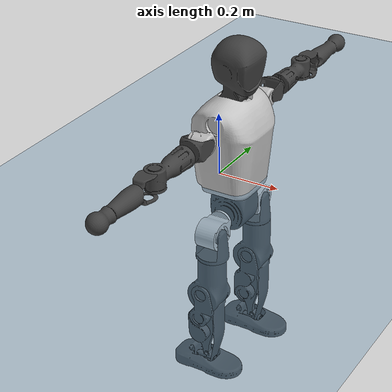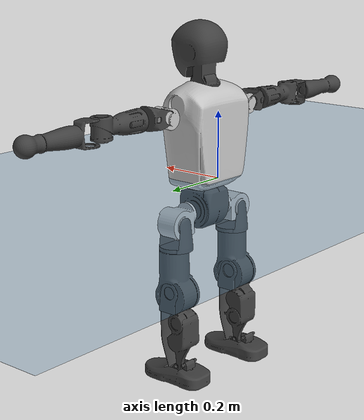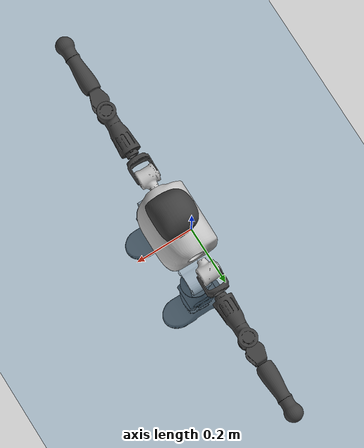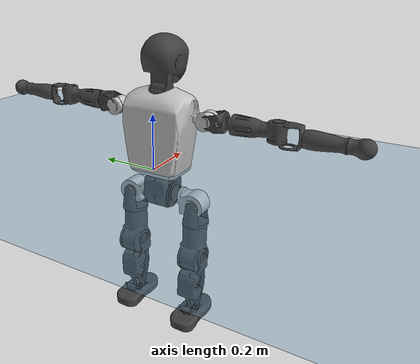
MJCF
<mujoco model="T1">
  <compiler angle="radian" assetdir="assets" balanceinertia="true" inertiafromgeom="false"/>

  <option timestep="0.005" density="1.2" viscosity="2e-05"/>

  <size nkey="1"/>

  <visual>
    <quality shadowsize="8192"/>
    <map shadowclip="0.5"/>
  </visual>

  <default>
    <default class="/">
      <joint armature="0.01" damping="0.01" frictionloss="0.1"/>
      <geom contype="0" conaffinity="0" group="1" solref="-1000 -80"/>
      <site size="0.01 0.005 0.005" group="5"/>
      <general forcelimited="true" biastype="affine" gainprm="25" biasprm="0 -25 -0.6"/>
      <default class="t1">
        <geom rgba="0.25 0.25 0.25 1"/>
        <default class="visual">
          <geom type="mesh" group="2"/>
        </default>
        <default class="collision">
          <geom group="3"/>
        </default>
        <default class="foot">
          <geom size="0.1115 0.05 0.015" type="box" condim="6" group="4" priority="1" solimp="0.015 1 0.015"/>
        </default>
        <default class="reward_collision_sphere">
          <geom group="5" rgba="1 0 0 1"/>
        </default>
      </default>
    </default>
  </default>

  <asset>
    <texture type="skybox" colorspace="auto" name="//unnamed_texture_0" builtin="gradient" rgb1="0.95 0.95 0.95" rgb2="0.95 0.95 0.95" width="100" height="600"/>
    <texture type="2d" colorspace="auto" name="texplane" builtin="checker" rgb1="0.345 0.575 0.748" rgb2="0.345 0.575 0.748" markrgb="1 1 1" width="512" height="512"/>
    <material name="MatPlane" class="/" texture="texplane" texuniform="true" texrepeat="2 2" specular="0.9"/>
    <mesh name="Trunk" class="/" file="Trunk.stl"/>
    <mesh name="H1" class="/" file="H1.stl"/>
    <mesh name="H2" class="/" file="H2.stl"/>
    <mesh name="AL1" class="/" file="AL1.stl"/>
    <mesh name="AL2" class="/" file="AL2.stl"/>
    <mesh name="AL3" class="/" file="AL3.stl"/>
    <mesh name="left_hand_link" class="/" file="left_hand_link.stl"/>
    <mesh name="AR1" class="/" file="AR1.stl"/>
    <mesh name="AR2" class="/" file="AR2.stl"/>
    <mesh name="AR3" class="/" file="AR3.stl"/>
    <mesh name="right_hand_link" class="/" file="right_hand_link.stl"/>
    <mesh name="Waist" class="/" file="Waist.stl"/>
    <mesh name="Hip_Pitch_Left" class="/" file="Hip_Pitch_Left.stl"/>
    <mesh name="Hip_Roll_Left" class="/" file="Hip_Roll_Left.stl"/>
    <mesh name="Hip_Yaw_Left" class="/" file="Hip_Yaw_Left.stl"/>
    <mesh name="Shank_Left" class="/" file="Shank_Left.stl"/>
    <mesh name="Ankle_Cross_Left" class="/" file="Ankle_Cross_Left.stl"/>
    <mesh name="left_foot_link" class="/" file="left_foot_link.stl"/>
    <mesh name="Hip_Pitch_Right" class="/" file="Hip_Pitch_Right.stl"/>
    <mesh name="Hip_Roll_Right" class="/" file="Hip_Roll_Right.stl"/>
    <mesh name="Hip_Yaw_Right" class="/" file="Hip_Yaw_Right.stl"/>
    <mesh name="Shank_Right" class="/" file="Shank_Right.stl"/>
    <mesh name="Ankle_Cross_Right" class="/" file="Ankle_Cross_Right.stl"/>
    <mesh name="right_foot_link" class="/" file="right_foot_link.stl"/>
  </asset>

  <worldbody>
    <geom name="floor" class="/" size="100 100 0.125" type="plane" group="0" material="MatPlane"/>
    <light name="toplight_shadow" class="/" pos="0 0 5" dir="0.0990148 0.0990148 -0.990148" type="directional" ambient="0.04 0.04 0.04" diffuse="0.55 0.55 0.55" specular="0.12 0.12 0.12"/>
    <light name="toplight_fill" class="/" pos="0 0 5" dir="0.0990148 0.0990148 -0.990148" type="directional" castshadow="false" ambient="0.04 0.04 0.04" diffuse="0.3 0.3 0.3" specular="0.08 0.08 0.08"/>
    <body name="trunk" childclass="t1" pos="0.000433687 -0.00169952 0.00573581" quat="0.999994 0.000506024 0.000653672 -0.00321975">
      <inertial pos="0.0517519 -0.00213385 0.094766" quat="0.999927 0.000635498 -0.0119389 -0.00185109" mass="13.6521" diaginertia="0.0683556 0.258494 0.0314314"/>
      <joint name="//unnamed_joint_0" type="free" armature="0" damping="0" frictionloss="0"/>
      <geom name="//unnamed_geom_1" class="visual" rgba="0.76 0.76 0.76 1" mesh="Trunk"/>
      <geom name="//unnamed_geom_2" class="collision" size="0.0767515 0.102335 0.153503" pos="0.0558564 0 0.105534" type="box"/>
      <geom name="//unnamed_geom_3" class="reward_collision_sphere" size="0.117686" pos="0.0558564 0 0.0879448"/>
      <geom name="//unnamed_geom_4" class="reward_collision_sphere" size="0.0153503" pos="0.0558564 0.107072 0"/>
      <geom name="//unnamed_geom_5" class="reward_collision_sphere" size="0.0153503" pos="0.0558564 -0.107072 0"/>
      <geom name="//unnamed_geom_6" class="reward_collision_sphere" size="0.0153503" pos="0.0558564 0.134785 0.158301"/>
      <geom name="//unnamed_geom_7" class="reward_collision_sphere" size="0.0153503" pos="0.0558564 -0.134785 0.158301"/>
      <site name="imu" pos="0.0277302 -0.0111368 -0.000886734" size="0.0102335"/>
      <camera name="track" pos="0 -2.51934 0" quat="0.707107 0.707107 0 0" mode="trackcom"/>
      <camera name="ego_camera" pos="0.113575 0 0.369368" quat="-0.5 -0.5 0.5 0.5"/>
      <body name="H1" pos="0.0557837 -4.64827e-05 0.210742" quat="0.999997 0.0012378 0.000192099 -0.00218127">
        <inertial pos="-0.00435696 -0.00219022 0.0524259" quat="0.766992 -0.0179952 0.00772334 0.641358" mass="0.479379" diaginertia="0.00017243 0.000688328 8.33466e-05"/>
        <joint name="AAHead_yaw" pos="0 0 0" axis="0.00974774 -0.00217511 0.99995" range="-1.42425 1.53708" armature="0.0112139" damping="0.00601143" frictionloss="0.106317"/>
        <geom name="//unnamed_geom_8" class="visual" mesh="H1"/>
        <body name="H2" pos="-0.00298777 0.00158626 0.0512541" quat="0.999995 -0.000490209 -0.00201582 0.00229025">
          <inertial pos="0.00733339 0.00320832 0.087264" quat="0.988327 0.106129 -0.0764233 -0.078144" mass="0.729101" diaginertia="0.00146311 0.00631683 0.000908421"/>
          <joint name="Head_pitch" pos="0 0 0" axis="-0.0260354 -0.999647 0.00519995" range="-1.16839 0.237024" armature="0.00796693" damping="0" frictionloss="0.0704867"/>
          <geom name="//unnamed_geom_9" class="visual" mesh="H2"/>
          <geom name="//unnamed_geom_10" class="collision" size="0.0818682" pos="0.0093094 0 0.0967393"/>
          <geom name="//unnamed_geom_11" class="reward_collision_sphere" size="0.0921017" pos="0.0186188 0 0.0879448"/>
        </body>
      </body>
      <body name="AL1" pos="0.0480499 0.13318 0.192294" quat="0.999999 0.000578675 -0.000883395 -0.000482542">
        <inertial pos="0.00563314 0.0561205 -0.000229316" quat="0.506099 0.485946 -0.513796 0.493694" mass="0.57686" diaginertia="0.00099135 0.00378544 0.000152093"/>
        <joint name="Left_Shoulder_Pitch" pos="0 0 0" axis="0.000672573 0.999994 -0.00333682" range="-3.34017 1.2093" armature="0.011022" damping="0.00361275" frictionloss="0.0992003"/>
        <geom name="//unnamed_geom_12" class="visual" rgba="0.76 0.76 0.76 1" mesh="AL1"/>
        <body name="AL2" pos="0.0031719 0.0598137 0.00652383" quat="0.999996 0.00234771 -0.000398965 0.00154408">
          <inertial pos="0.00304425 0.0466194 0.00450322" quat="0.489268 0.510425 -0.487604 0.512177" mass="0.165508" diaginertia="0.00027549 0.00112221 9.56265e-05"/>
          <joint name="Left_Shoulder_Roll" pos="0 0 0" axis="-0.999585 -0.0253161 -0.0137337" range="-1.5737 1.70067" armature="0.011589" damping="0.0106304" frictionloss="0.131385"/>
          <geom name="//unnamed_geom_13" class="visual" mesh="AL2"/>
          <body name="AL3" pos="0.00612175 0.0765589 -0.000906709" quat="0.999999 -0.000713464 -0.000534305 0.00131936">
            <inertial pos="-0.00235029 0.107323 -0.00475484" quat="0.705151 0.709051 0.000844481 -0.0028636" mass="1.07984" diaginertia="0.0090986 0.0398933 0.000331602"/>
            <joint name="Left_Elbow_Pitch" pos="0 0 0" axis="-0.00517484 -0.999684 0.0246071" range="-2.2309 2.26718" armature="0.00952899" damping="0.00467783" frictionloss="0.104891"/>
            <geom name="//unnamed_geom_14" class="visual" mesh="AL3"/>
            <geom name="//unnamed_geom_15" class="collision" size="0.0307006 0.0767515" pos="0 0.0629835 0" quat="0.707105 0.707108 0 0" type="cylinder"/>
            <geom name="//unnamed_geom_16" class="reward_collision_sphere" size="0.0368407"/>
            <body name="left_hand_link" pos="0.001863 0.190658 -0.00657504" quat="1 -0.00053099 4.348e-05 -0.000114419">
              <inertial pos="-1.32379e-05 0.138073 -0.00199465" quat="0.706711 0.707472 0.00479642 -0.00446325" mass="0.320519" diaginertia="0.00564543 0.0231051 0.000104054"/>
              <joint name="Left_Elbow_Yaw" pos="0 0 0" axis="-0.000408006 -0.0224155 0.999749" stiffness="0.0085506" range="-2.41446 0.0273359" armature="0.0117471" damping="0.0173252" frictionloss="0.0943698"/>
              <geom name="//unnamed_geom_17" class="visual" mesh="left_hand_link"/>
              <geom name="//unnamed_geom_18" class="collision" size="0.0307006 0.0895434" pos="0 0.163757 0" quat="0.707105 0.707108 0 0" type="cylinder"/>
              <geom name="//unnamed_geom_19" class="reward_collision_sphere" size="0.0511676"/>
              <geom name="//unnamed_geom_20" class="reward_collision_sphere" size="0.0358173" pos="0 0.138564 0"/>
              <geom name="//unnamed_geom_21" class="reward_collision_sphere" size="0.0358173" pos="0 0.270829 0"/>
            </body>
          </body>
        </body>
      </body>
      <body name="AR1" pos="0.0506603 -0.129604 0.188772" quat="0.999997 -0.00117661 -0.000689838 -0.00189474">
        <inertial pos="-0.00076655 -0.0569634 0.00210578" quat="0.504241 0.495772 -0.504373 0.495539" mass="0.55095" diaginertia="0.000985633 0.00403938 0.000151215"/>
        <joint name="Right_Shoulder_Pitch" pos="0 0 0" axis="-0.00427802 -0.999915 0.0123313" stiffness="0.0182623" range="-1.23176 3.27559" armature="0.00946527" damping="0.0213233" frictionloss="0.11403"/>
        <geom name="//unnamed_geom_22" class="visual" rgba="0.76 0.76 0.76 1" mesh="AR1"/>
        <body name="AR2" pos="0.000386969 -0.0570301 0.0024811" quat="1 -0.000476469 0.000568534 -1.57478e-05">
          <inertial pos="0.00282753 -0.0478936 -0.00191678" quat="0.507747 0.491449 -0.511822 0.488578" mass="0.181624" diaginertia="0.000258076 0.00106692 9.8493e-05"/>
          <joint name="Right_Shoulder_Roll" pos="0 0 0" axis="-0.999949 -0.00771904 -0.00646621" range="-1.70092 1.56717" armature="0.0101614" damping="0.0084161" frictionloss="0.0796692"/>
          <geom name="//unnamed_geom_23" class="visual" mesh="AR2"/>
          <body name="AR3" pos="0.00268214 -0.0798808 -0.00176641" quat="1 0.000218931 -7.64214e-05 0.000900858">
            <inertial pos="0.00622153 -0.106007 0.00230186" quat="0.703017 0.711104 0.00710816 -0.00696267" mass="1.04052" diaginertia="0.00940451 0.0435057 0.00032659"/>
            <joint name="Right_Elbow_Pitch" pos="0 0 0" axis="-0.00159009 0.999998 0.00112823" stiffness="0.0310839" range="-2.26241 2.274" armature="0.0120062" damping="0.00153918" frictionloss="0.0909471"/>
            <geom name="//unnamed_geom_24" class="visual" mesh="AR3"/>
            <geom name="//unnamed_geom_25" class="collision" size="0.0307006 0.0767515" pos="0 -0.0629835 0" quat="0.707105 0.707108 0 0" type="cylinder"/>
            <geom name="//unnamed_geom_26" class="reward_collision_sphere" size="0.0368407"/>
            <body name="right_hand_link" pos="-0.00128495 -0.184174 -0.00640818" quat="1 0.00021726 0.000153869 -0.000504758">
              <inertial pos="0.00215732 -0.140916 -0.000883733" quat="0.707974 0.706197 0.00119581 0.0075288" mass="0.349343" diaginertia="0.00577535 0.0255652 0.000113097"/>
              <joint name="Right_Elbow_Yaw" pos="0 0 0" axis="0.00211002 0.00232414 0.999995" range="-0.0461646 2.44241" armature="0.00968737" damping="0.00861201" frictionloss="0.112282"/>
              <geom name="//unnamed_geom_27" class="visual" mesh="right_hand_link"/>
              <geom name="//unnamed_geom_28" class="collision" size="0.0307006 0.0895434" pos="0 -0.163757 0" quat="0.707105 0.707108 0 0" type="cylinder"/>
              <geom name="//unnamed_geom_29" class="reward_collision_sphere" size="0.0511676"/>
              <geom name="//unnamed_geom_30" class="reward_collision_sphere" size="0.0358173" pos="0 -0.138564 0"/>
              <geom name="//unnamed_geom_31" class="reward_collision_sphere" size="0.0358173" pos="0 -0.270829 0"/>
            </body>
          </body>
        </body>
      </body>
      <body name="Waist" pos="0.0562282 -0.00381006 -0.104736" quat="1 -0.000364324 0.000588236 -0.000453918">
        <inertial pos="0.00206854 0.000713132 0.00724383" quat="0.984247 -0.00197737 -0.176726 0.00471054" mass="2.82744" diaginertia="0.00392053 0.0161474 0.00260007"/>
        <joint name="Waist" pos="0 0 0" axis="-0.00822724 -0.00611241 0.999947" stiffness="0.00135265" range="-1.51492 1.56321" armature="0.0106007" damping="0.0293282" frictionloss="0.105506"/>
        <geom name="//unnamed_geom_32" class="visual" mesh="Waist"/>
        <body name="Hip_Pitch_Left" pos="0.00409884 0.126663 -0.00498381" quat="1 0.00048111 8.25533e-07 0.000245035">
          <inertial pos="0.0025887 -0.00839018 -0.00938759" quat="0.97465 0.222679 0.0209678 -0.00560564" mass="1.0149" diaginertia="0.00122883 0.00469038 0.000672966"/>
          <joint name="Left_Hip_Pitch" pos="0 0 0" axis="0.0015723 0.99998 -0.00619127" stiffness="0.0141508" range="-1.87431 1.586" armature="0.0101016" damping="0.0235822" frictionloss="0.122876"/>
          <geom name="//unnamed_geom_33" class="visual" rgba="0.76 0.76 0.76 1" mesh="Hip_Pitch_Left"/>
          <body name="Hip_Roll_Left" pos="0.000456739 -0.000150339 -0.021589" quat="1 -0.000146435 0.000449486 -0.00023911">
            <inertial pos="0.000774188 -0.00236314 -0.0467637" quat="0.707305 -0.00650042 -0.00694999 0.706844" mass="0.388851" diaginertia="0.00114639 0.00459895 0.000265394"/>
            <joint name="Left_Hip_Roll" pos="0 0 0" axis="-0.999987 0.00379738 -0.00341259" stiffness="0.00606081" range="-1.61803 0.21128" armature="0.0102602" damping="0" frictionloss="0.114651"/>
            <geom name="//unnamed_geom_34" class="visual" mesh="Hip_Roll_Left"/>
            <geom name="//unnamed_geom_35" class="reward_collision_sphere" size="0.0562844"/>
            <body name="Hip_Yaw_Left" pos="0.00358496 0.00216215 -0.0794447" quat="1 0.000265163 0.000172573 4.70914e-06">
              <inertial pos="-0.00401937 0.00037706 -0.0731885" quat="0.694876 -0.0313474 -0.0362239 0.717532" mass="2.40116" diaginertia="0.0164741 0.0823551 0.00137298"/>
              <joint name="Left_Hip_Yaw" pos="0 0 0" axis="0.0137341 0.00622031 -0.999886" stiffness="0.032099" range="-1.01827 0.947939" armature="0.0115602" damping="0.00877267" frictionloss="0.125868"/>
              <geom name="//unnamed_geom_36" class="visual" mesh="Hip_Yaw_Left"/>
              <geom name="//unnamed_geom_37" class="collision" size="0.0511676 0.0818682" type="cylinder"/>
              <body name="Shank_Left" pos="-0.0112715 -0.00512423 -0.122779" quat="0.999995 -0.00103427 0.00106425 0.002764">
                <inertial pos="-0.00566306 0.00752176 -0.110614" quat="0.998608 0.00803527 -0.0058632 0.0518002" mass="1.83615" diaginertia="0.0231128 0.106553 0.000994343"/>
                <joint name="Left_Knee_Pitch" pos="0 0 0" axis="0.000121849 1 -0.000615236" range="-0.0395664 2.34959" armature="0.00902107" damping="0" frictionloss="0.12842"/>
                <geom name="//unnamed_geom_38" class="visual" mesh="Shank_Left"/>
                <geom name="//unnamed_geom_39" class="collision" size="0.0511676 0.0767515" pos="0 0 -0.105534" type="cylinder"/>
                <geom name="//unnamed_geom_40" class="reward_collision_sphere" size="0.0665179"/>
                <body name="Ankle_Cross_Left" pos="0.00634865 -0.00101426 -0.246542" quat="1 0.000177112 -0.000161347 -0.000100675">
                  <inertial pos="-0.000936403 -0.00182113 -0.00540587" quat="0.421785 0.553563 0.547396 0.464783" mass="0.0810576" diaginertia="2.01998e-05 8.05016e-05 6.03718e-06"/>
                  <joint name="Left_Ankle_Pitch" pos="0 0 0" axis="-0.00811775 0.999959 0.00400552" range="-0.893189 0.438555" armature="0.0101255" damping="0" frictionloss="0.10001"/>
                  <geom name="//unnamed_geom_41" class="visual" mesh="Ankle_Cross_Left"/>
                  <body name="left_foot_link" pos="-0.00277398 0.00169686 -0.0112275" quat="1 0.00073194 -7.70715e-05 -0.000478914">
                    <inertial pos="0.000717522 0.000549648 -0.014947" quat="-0.00113085 0.619623 0.000437783 0.784899" mass="0.738539" diaginertia="0.00192017 0.00727721 0.00114335"/>
                    <joint name="Left_Ankle_Roll" pos="0 0 0" axis="-0.999993 -0.00120416 -0.0036473" range="-0.398151 0.446072" armature="0.0103506" damping="0" frictionloss="0.103394"/>
                    <geom name="//unnamed_geom_42" class="visual" mesh="left_foot_link"/>
                    <geom name="left_foot" class="foot" size="0.0931429 0.0410044 0.015191" pos="0.0093094 0 -0.0131917"/>
                    <geom name="//unnamed_geom_44" class="reward_collision_sphere" size="0.0532143" pos="0.0093094 0 -0.0131917"/>
                    <geom name="//unnamed_geom_45" class="reward_collision_sphere" size="0.0307006" pos="0.0884393 -0.0289724 -0.0131917"/>
                    <geom name="//unnamed_geom_46" class="reward_collision_sphere" size="0.0307006" pos="-0.0651658 -0.0289724 -0.0131917"/>
                    <site name="left_foot" class="foot" pos="0.0093094 0 -0.0131917" size="0.0102335"/>
                  </body>
                </body>
              </body>
            </body>
          </body>
        </body>
        <body name="Hip_Pitch_Right" pos="0.00235718 -0.134945 -0.00467632" quat="0.999996 -0.00133664 -0.00120252 0.0020372">
          <inertial pos="0.00037111 0.0159183 -0.0137774" quat="0.97349 -0.228176 0.015785 -0.00200198" mass="1.12298" diaginertia="0.00132884 0.00477969 0.000668692"/>
          <joint name="Right_Hip_Pitch" pos="0 0 0" axis="-0.00602702 -0.999962 -0.00634679" stiffness="0.000271895" range="-1.59851 1.88578" armature="0.009916" damping="0.00307932" frictionloss="0.0710087"/>
          <geom name="//unnamed_geom_47" class="visual" rgba="0.76 0.76 0.76 1" mesh="Hip_Pitch_Right"/>
          <body name="Hip_Roll_Right" pos="0.00444343 -0.00252833 -0.0206262" quat="1 0.000532121 0.000277944 0.000558526">
            <inertial pos="-2.45553e-05 -0.00107513 -0.0470972" quat="0.707053 -0.0065143 -0.00489793 0.707113" mass="0.413314" diaginertia="0.00132997 0.00486465 0.000274918"/>
            <joint name="Right_Hip_Roll" pos="0 0 0" axis="-1 -0.000497979 0.000209604" stiffness="0.00449593" range="-0.235547 1.54854" armature="0.00956936" damping="0.00107282" frictionloss="0.0833649"/>
            <geom name="//unnamed_geom_48" class="visual" mesh="Hip_Roll_Right"/>
            <geom name="//unnamed_geom_49" class="reward_collision_sphere" size="0.0562844"/>
            <body name="Hip_Yaw_Right" pos="-0.00393822 0.000320787 -0.0761375" quat="1 -1.70659e-05 -0.000133756 -0.000146405">
              <inertial pos="-0.0025484 -0.0070494 -0.076453" quat="0.714152 -0.0269368 -0.0293596 0.698856" mass="2.49023" diaginertia="0.0183792 0.0886435 0.00146619"/>
              <joint name="Right_Hip_Yaw" pos="0 0 0" axis="0.00370034 -0.00580693 -0.999976" range="-0.969645 1.02777" armature="0.010346" damping="0" frictionloss="0.100378"/>
              <geom name="//unnamed_geom_50" class="visual" mesh="Hip_Yaw_Right"/>
              <geom name="//unnamed_geom_51" class="collision" size="0.0511676 0.0818682" type="cylinder"/>
              <body name="Shank_Right" pos="-0.0173161 -0.0028483 -0.124264" quat="1 5.05262e-05 -5.20935e-05 -0.000387589">
                <inertial pos="0.00196235 0.00125889 -0.106031" quat="0.999651 -0.00553302 -0.025842 0.00037953" mass="2.01086" diaginertia="0.0257429 0.115204 0.00113672"/>
                <joint name="Right_Knee_Pitch" pos="0 0 0" axis="0.00390271 -0.99996 0.00806093" stiffness="0.00129639" range="-2.32468 0.0934026" armature="0.0104077" damping="0.00864711" frictionloss="0.11363"/>
                <geom name="//unnamed_geom_52" class="visual" mesh="Shank_Right"/>
                <geom name="//unnamed_geom_53" class="collision" size="0.0511676 0.0767515" pos="0 0 -0.105534" type="cylinder"/>
                <geom name="//unnamed_geom_54" class="reward_collision_sphere" size="0.0665179"/>
                <body name="Ankle_Cross_Right" pos="0.000384464 -0.000164848 -0.242124" quat="1 0.000343683 -0.0004718 -0.000126139">
                  <inertial pos="-0.00524322 0.000682218 -0.00930418" quat="0.445179 0.548113 0.551551 0.44405" mass="0.0774465" diaginertia="1.98148e-05 7.72717e-05 5.79526e-06"/>
                  <joint name="Right_Ankle_Pitch" pos="0 0 0" axis="0.00504634 -0.999987 -0.000538541" range="-0.499868 0.83797" armature="0.00902067" damping="0.0112827" frictionloss="0.0994485"/>
                  <geom name="//unnamed_geom_55" class="visual" mesh="Ankle_Cross_Right"/>
                  <body name="right_foot_link" pos="-0.00375759 -0.00265834 -0.0127168" quat="1 0.000162193 -0.000370552 -0.000623263">
                    <inertial pos="0.00155096 -0.000783495 -0.0145504" quat="0.00636119 0.624872 -0.00836957 0.780656" mass="0.716832" diaginertia="0.00189099 0.00776234 0.00113235"/>
                    <joint name="Right_Ankle_Roll" pos="0 0 0" axis="-0.999999 0.000874654 -0.00147589" range="-0.477759 0.46252" armature="0.0115149" damping="0.000406862" frictionloss="0.0643736"/>
                    <geom name="//unnamed_geom_56" class="visual" mesh="right_foot_link"/>
                    <geom name="right_foot" class="foot" size="0.0998437 0.0635847 0.0112067" pos="0.0093094 0 -0.0131917"/>
                    <geom name="//unnamed_geom_58" class="reward_collision_sphere" size="0.0409341"/>
                    <geom name="//unnamed_geom_59" class="reward_collision_sphere" size="0.0307006" pos="0.0093094 0 -0.0131917"/>
                    <geom name="//unnamed_geom_60" class="reward_collision_sphere" size="0.0307006" pos="0.0884393 0.0289724 -0.0131917"/>
                    <geom name="//unnamed_geom_61" class="reward_collision_sphere" size="0.0307006" pos="-0.0651658 0.0289724 -0.0131917"/>
                    <site name="right_foot" class="foot" pos="0.0093094 0 -0.0131917" size="0.0102335"/>
                  </body>
                </body>
              </body>
            </body>
          </body>
        </body>
      </body>
    </body>
  </worldbody>

  <contact>
    <pair class="/" geom1="floor" geom2="left_foot" name="//unnamed_contact_0"/>
    <pair class="/" geom1="floor" geom2="right_foot" name="//unnamed_contact_1"/>
  </contact>

  <actuator>
    <general name="AAHead_yaw" class="/" joint="AAHead_yaw" forcerange="-7.33851 7.33851" gainprm="23.4937" biasprm="0 -23.4937 -0.637964"/>
    <general name="Head_pitch" class="/" joint="Head_pitch" forcerange="-7.19451 7.19451" gainprm="23.4937" biasprm="0 -23.4937 -0.637964"/>
    <general name="Left_Shoulder_Pitch" class="/" joint="Left_Shoulder_Pitch" forcerange="-18.139 18.139" gainprm="23.4937" biasprm="0 -23.4937 -0.637964"/>
    <general name="Left_Shoulder_Roll" class="/" joint="Left_Shoulder_Roll" forcerange="-19.5234 19.5234" gainprm="23.4937" biasprm="0 -23.4937 -0.637964"/>
    <general name="Left_Elbow_Pitch" class="/" joint="Left_Elbow_Pitch" forcerange="-21.3907 21.3907" gainprm="23.4937" biasprm="0 -23.4937 -0.637964"/>
    <general name="Left_Elbow_Yaw" class="/" joint="Left_Elbow_Yaw" forcerange="-18.8221 18.8221" gainprm="23.4937" biasprm="0 -23.4937 -0.637964"/>
    <general name="Right_Shoulder_Pitch" class="/" joint="Right_Shoulder_Pitch" forcerange="-20.2156 20.2156" gainprm="23.4937" biasprm="0 -23.4937 -0.637964"/>
    <general name="Right_Shoulder_Roll" class="/" joint="Right_Shoulder_Roll" forcerange="-17.6234 17.6234" gainprm="23.4937" biasprm="0 -23.4937 -0.637964"/>
    <general name="Right_Elbow_Pitch" class="/" joint="Right_Elbow_Pitch" forcerange="-18.072 18.072" gainprm="23.4937" biasprm="0 -23.4937 -0.637964"/>
    <general name="Right_Elbow_Yaw" class="/" joint="Right_Elbow_Yaw" forcerange="-19.4926 19.4926" gainprm="23.4937" biasprm="0 -23.4937 -0.637964"/>
    <general name="Waist" class="/" joint="Waist" forcerange="-30.2193 30.2193" gainprm="23.4937" biasprm="0 -23.4937 -0.637964"/>
    <general name="Left_Hip_Pitch" class="/" joint="Left_Hip_Pitch" forcerange="-46.7315 46.7315" gainprm="23.4937" biasprm="0 -23.4937 -0.637964"/>
    <general name="Left_Hip_Roll" class="/" joint="Left_Hip_Roll" forcerange="-23.6245 23.6245" gainprm="23.4937" biasprm="0 -23.4937 -0.637964"/>
    <general name="Left_Hip_Yaw" class="/" joint="Left_Hip_Yaw" forcerange="-32.3386 32.3386" gainprm="23.4937" biasprm="0 -23.4937 -0.637964"/>
    <general name="Left_Knee_Pitch" class="/" joint="Left_Knee_Pitch" forcerange="-48.4217 48.4217" gainprm="23.4937" biasprm="0 -23.4937 -0.637964"/>
    <general name="Left_Ankle_Pitch" class="/" joint="Left_Ankle_Pitch" forcerange="-21.4073 21.4073" gainprm="23.4937" biasprm="0 -23.4937 -0.637964"/>
    <general name="Left_Ankle_Roll" class="/" joint="Left_Ankle_Roll" forcerange="-15.765 15.765" gainprm="23.4937" biasprm="0 -23.4937 -0.637964"/>
    <general name="Right_Hip_Pitch" class="/" joint="Right_Hip_Pitch" forcerange="-54.1334 54.1334" gainprm="23.4937" biasprm="0 -23.4937 -0.637964"/>
    <general name="Right_Hip_Roll" class="/" joint="Right_Hip_Roll" forcerange="-28.2017 28.2017" gainprm="23.4937" biasprm="0 -23.4937 -0.637964"/>
    <general name="Right_Hip_Yaw" class="/" joint="Right_Hip_Yaw" forcerange="-28.8783 28.8783" gainprm="23.4937" biasprm="0 -23.4937 -0.637964"/>
    <general name="Right_Knee_Pitch" class="/" joint="Right_Knee_Pitch" forcerange="-59.5642 59.5642" gainprm="23.4937" biasprm="0 -23.4937 -0.637964"/>
    <general name="Right_Ankle_Pitch" class="/" joint="Right_Ankle_Pitch" forcerange="-19.9258 19.9258" gainprm="23.4937" biasprm="0 -23.4937 -0.637964"/>
    <general name="Right_Ankle_Roll" class="/" joint="Right_Ankle_Roll" forcerange="-14.2444 14.2444" gainprm="23.4937" biasprm="0 -23.4937 -0.637964"/>
  </actuator>

  <sensor>
    <gyro site="imu" name="imu_angular_velocity"/>
    <velocimeter site="imu" name="imu_linear_velocity"/>
    <framelinvel objtype="site" objname="left_foot" name="left_foot_global_linear_velocity"/>
    <framelinvel objtype="site" objname="right_foot" name="right_foot_global_linear_velocity"/>
  </sensor>

  <keyframe>
    <key name="home" qpos="0 0 0.6385 1 0 0 0 0 0 0 1.4 0 -0.4 0 -1.4 0 0.4 0 -0.4 0 0 0.8 -0.4 0 0.4 0 0 -0.8 0.4 0"/>
  </keyframe>
</mujoco>
